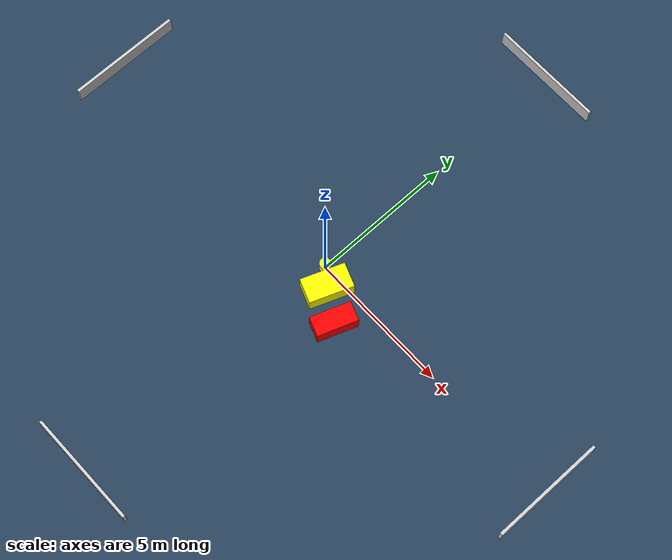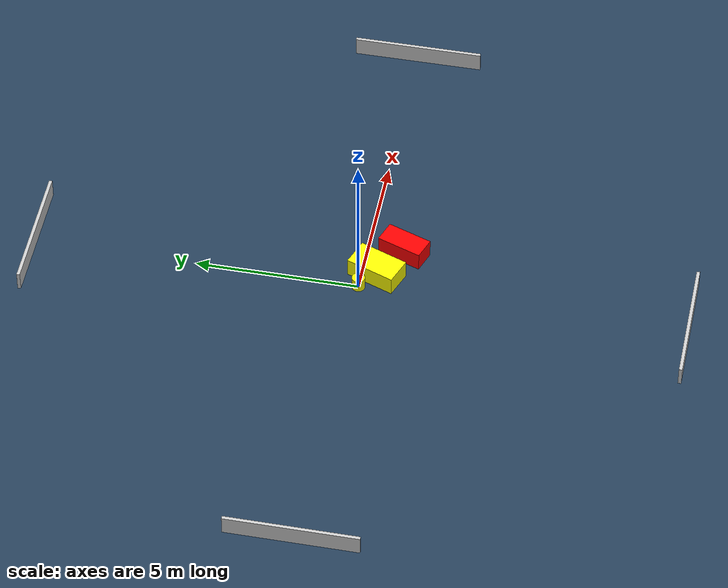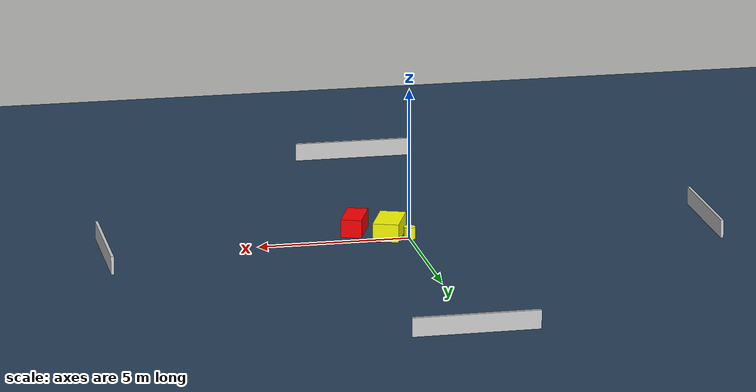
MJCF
<?xml version="1.0" ?>
<mujoco model="generated_environment">
  <option timestep="0.01" integrator="RK4" cone="elliptic"/>
  <default>
    <geom density="1"/>
  </default>
  <asset>
    <texture builtin="gradient" height="3072" name="skybox" rgb1="0.3 0.5 0.7" rgb2="0 0 0" type="skybox" width="512"/>
    <texture builtin="checker" height="300" name="groundplane" rgb1="0.2 0.3 0.4" rgb2="0.1 0.2 0.3" type="2d" width="300"/>
    <material name="groundplane" reflectance="0.2" texrepeat="5 5" texture="groundplane"/>
  </asset>
  <worldbody>
    <light dir="0 0 -1" directional="true" pos="0 0 1.5"/>
    <geom condim="3" friction="0.5 0.005 0.001" material="groundplane" name="floor" pos="0 0 0" size="0 0 0.05" type="plane"/>
    <body name="walls">
      <geom name="wall_1" condim="4" pos="-10.0 0.0 0.3" rgba="0.800000011920929 0.800000011920929 0.800000011920929 1.0" size="0.05 2.0 0.3" type="box"/>
      <geom name="wall_2" condim="4" pos="10.0 0.0 0.3" rgba="0.800000011920929 0.800000011920929 0.800000011920929 1.0" size="0.05 2.0 0.3" type="box"/>
      <geom name="wall_3" condim="4" pos="0.0 -10.0 0.3" rgba="0.800000011920929 0.800000011920929 0.800000011920929 1.0" size="2.0 0.05 0.3" type="box"/>
      <geom name="wall_4" condim="4" pos="0.0 10.0 0.3" rgba="0.800000011920929 0.800000011920929 0.800000011920929 1.0" size="2.0 0.05 0.3" type="box"/>
    </body>
    <body name="robot">
      <joint name="joint_x" type="slide" pos="0 0 0" axis="1 0 0"/>
      <joint name="joint_y" type="slide" pos="0 0 0" axis="0 1 0"/>
      <geom name="robot" type="cylinder" pos="0.0 0.0 0.2" size="0.2 0.2 0.0" mass="5.0" friction="1.0 0.005 0.0001" condim="4" rgba="1.0 1.0 0.0 1.0"/>
    </body>
    <body name="obstacle_1_movable">
      <geom name="obstacle_1_movable" condim="4" pos="0.5789749304888976 -0.45158430859332066 0.3" euler="0 0 339.2627317166242" friction="0.0 0.005 0.001" rgba="1.0 1.0 0.0 1.0" size="0.42785177874237884 0.7705531796771963 0.3" type="box" mass="0.1"/>
      <joint type="free"/>
    </body>
    <body name="obstacle_2_static">
      <geom name="obstacle_2_static" condim="4" pos="1.6156005336537635 -1.101122145365614 0.3" euler="0 0 249.99562999062186" friction="0.0 0.005 0.001" rgba="1.0 0.0 0.0 1.0" size="0.7069895335850802 0.3429401613249117 0.3" type="box"/>
    </body>
  </worldbody>
  <actuator>
    <motor name="actuator_x" joint="joint_x" gear="1" ctrlrange="-1 1"/>
    <motor name="actuator_y" joint="joint_y" gear="1" ctrlrange="-1 1"/>
  </actuator>
</mujoco>
